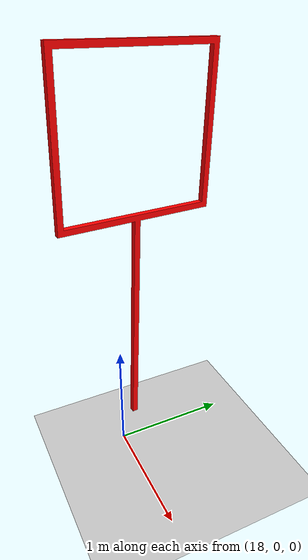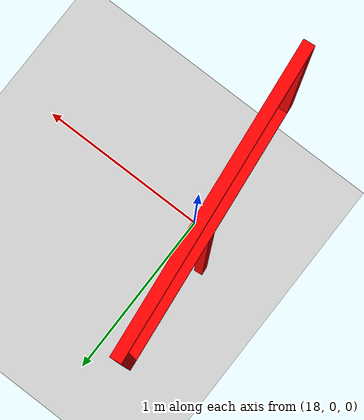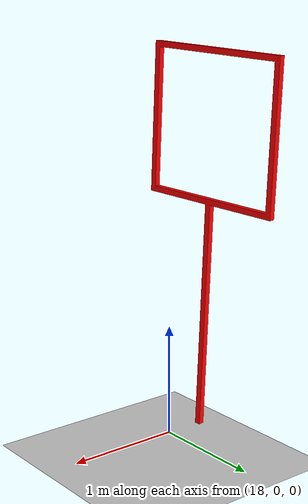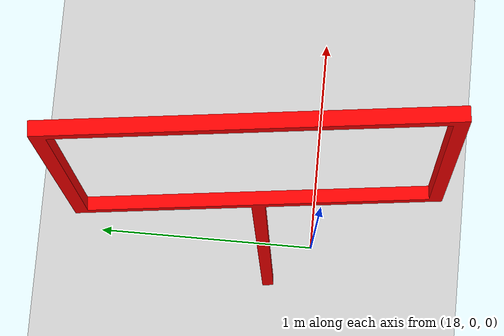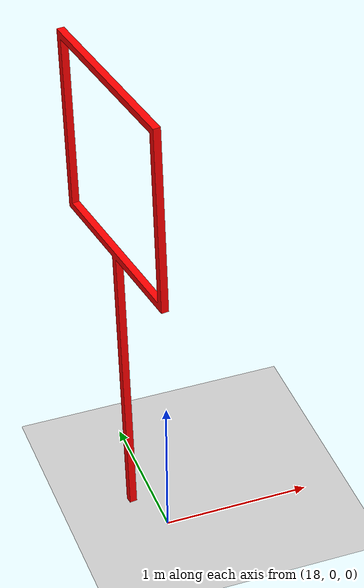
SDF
<sdf version="1.6">
 <world name="default">
  <plugin name="ros_interface_plugin" filename="librotors_gazebo_ros_interface_plugin.so"/>
  <light name="sun" type="directional">
   <pose>0 0 10 0 -0 0</pose>
   <diffuse>0.8 0.8 0.8 1</diffuse>
   <specular>0.2 0.2 0.2 1</specular>
   <attenuation>
    <range>1000</range>
    <constant>0.9</constant>
    <linear>0.01</linear>
    <quadratic>0.001</quadratic>
   </attenuation>
   <direction>-0.5 0.1 -0.9</direction>
  </light>
  <model name="ground_plane">
   <static>1</static>
   <link name="link">
    <collision name="collision">
     <geometry><plane><normal>0 0 1</normal><size>100 100</size></plane></geometry>
     <surface><friction><ode><mu>100</mu><mu2>50</mu2></ode></friction></surface>
    </collision>
    <visual name="visual">
     <cast_shadows>0</cast_shadows>
     <geometry><plane><normal>0 0 1</normal><size>100 100</size></plane></geometry>
     <material>
      <script><uri>file://media/materials/scripts/gazebo.material</uri><name>Gazebo/Grey</name></script>
     </material>
    </visual>
   </link>
  </model>
  <gravity>0 0 -9.8</gravity>
  <magnetic_field>6e-06 2.3e-05 -4.2e-05</magnetic_field>
  <atmosphere type="adiabatic"/>
  <physics name="default_physics" default="0" type="ode">
   <max_step_size>0.001</max_step_size>
   <real_time_factor>1</real_time_factor>
   <real_time_update_rate>1000</real_time_update_rate>
  </physics>
  <scene><ambient>0.4 0.4 0.4 1</ambient><background>0.7 0.7 0.7 1</background><shadows>1</shadows></scene>
  <audio><device>default</device></audio>
  <spherical_coordinates>
   <surface_model>EARTH_WGS84</surface_model>
   <latitude_deg>0</latitude_deg>
   <longitude_deg>0</longitude_deg>
   <elevation>0</elevation>
   <heading_deg>0</heading_deg>
  </spherical_coordinates>
  <model name="iROS2016 Track">
   <link name="gate_18">
    <pose>8.5 -7.5 0 0 -0 0.348901</pose>
    <visual name="castor_visual">
     <pose>-0.200 0 -0.12 0 0 0</pose>
     <geometry><mesh><uri>model://iros2016_track/gates/05.dae</uri></mesh></geometry>
     <material>
      <ambient>1 0 0 1</ambient>
      <diffuse>1 0 0 1</diffuse>
      <specular>0.1 0.1 0.1 1</specular>
      <emissive>0 0 0 0</emissive>
     </material>
    </visual>
   </link>
   <static>1</static>
   <pose>27.1151 6.50643 0.130142 0.023004 -0.03291 -1.80731</pose>
  </model>
 </world>
</sdf>
